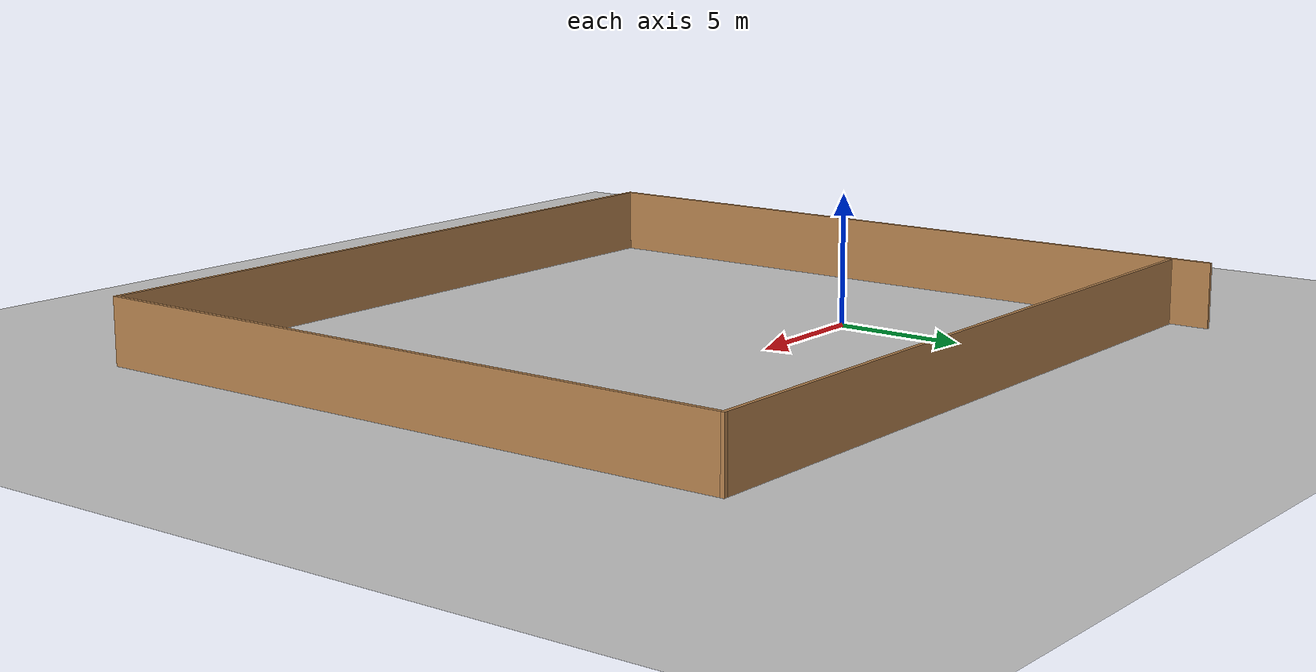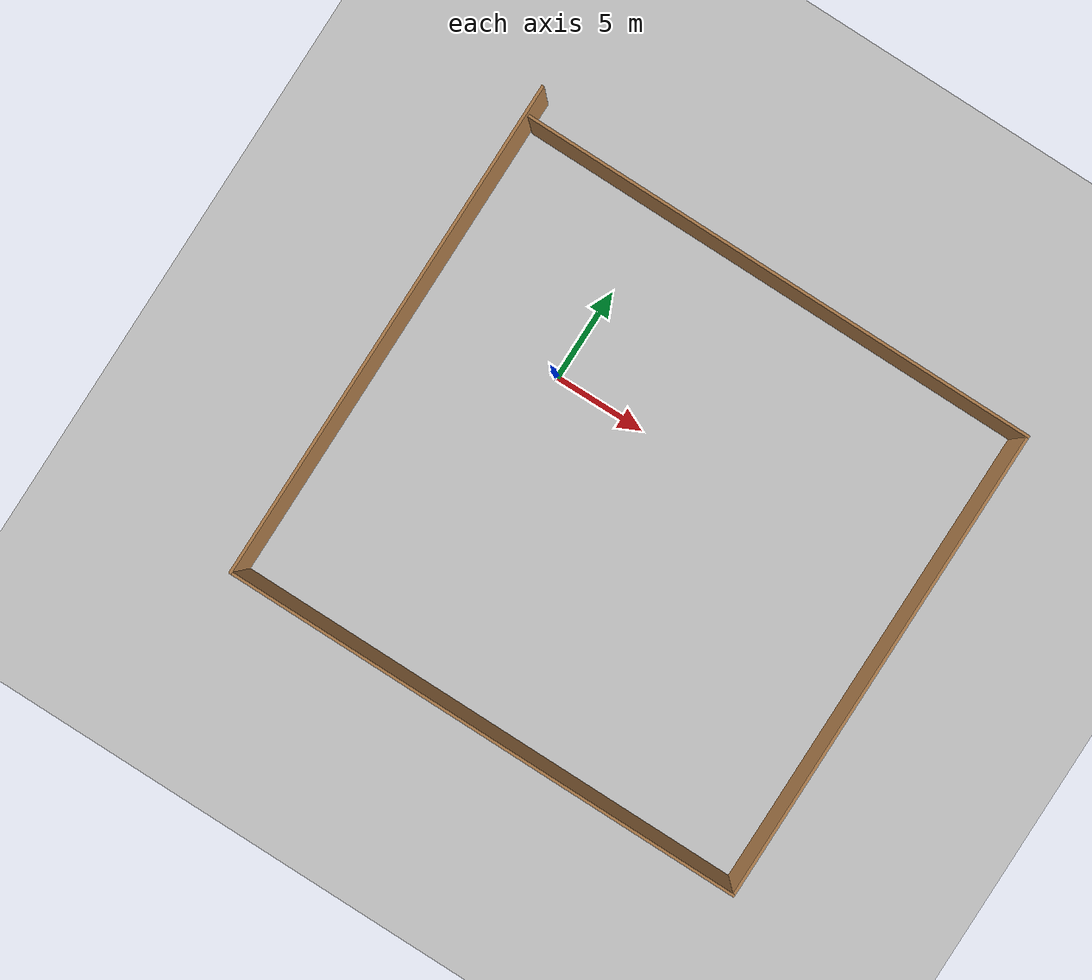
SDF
<sdf version="1.6">
 <world name="default">
  <model name="ground_plane">
   <static>1</static>
   <link name="link">
    <collision name="collision">
     <geometry><plane><normal>0 0 1</normal><size>100 100</size></plane></geometry>
     <surface>
      <contact><collide_bitmask>65535</collide_bitmask></contact>
      <friction><ode><mu>100</mu><mu2>50</mu2></ode></friction>
     </surface>
    </collision>
    <visual name="visual">
     <cast_shadows>0</cast_shadows>
     <geometry><plane><normal>0 0 1</normal><size>100 100</size></plane></geometry>
     <material>
      <script><uri>file://media/materials/scripts/gazebo.material</uri><name>Gazebo/Grey</name></script>
     </material>
    </visual>
   </link>
  </model>
  <model name="outdoor_0">
   <pose>6.43796 -2.65422 0 0 -0 0</pose>
   <link name="Wall_10">
    <collision name="Wall_10_Collision">
     <geometry><box><size>28.5 0.15 2.5</size></box></geometry>
     <pose>0 0 1.25 0 -0 0</pose>
    </collision>
    <visual name="Wall_10_Visual">
     <pose>0 0 1.25 0 -0 0</pose>
     <geometry><box><size>28.5 0.15 2.5</size></box></geometry>
     <material>
      <script><uri>file://media/materials/scripts/gazebo.material</uri><name>Gazebo/Wood</name></script>
      <ambient>1 1 1 1</ambient>
     </material>
     <meta><layer>0</layer></meta>
    </visual>
    <pose>0.125001 12.3 0 0 -0 3.14159</pose>
   </link>
   <link name="Wall_7">
    <collision name="Wall_7_Collision">
     <geometry><box><size>27.75 0.15 2.5</size></box></geometry>
     <pose>0 0 1.25 0 -0 0</pose>
    </collision>
    <visual name="Wall_7_Visual">
     <pose>0 0 1.25 0 -0 0</pose>
     <geometry><box><size>27.75 0.15 2.5</size></box></geometry>
     <material>
      <script><uri>file://media/materials/scripts/gazebo.material</uri><name>Gazebo/Wood</name></script>
      <ambient>1 1 1 1</ambient>
     </material>
     <meta><layer>0</layer></meta>
    </visual>
    <pose>-14.3 0 0 0 -0 -1.5708</pose>
   </link>
   <link name="Wall_8">
    <collision name="Wall_8_Collision">
     <geometry><box><size>28.75 0.15 2.5</size></box></geometry>
     <pose>0 0 1.25 0 -0 0</pose>
    </collision>
    <visual name="Wall_8_Visual">
     <pose>0 0 1.25 0 -0 0</pose>
     <geometry><box><size>28.75 0.15 2.5</size></box></geometry>
     <material>
      <script><uri>file://media/materials/scripts/gazebo.material</uri><name>Gazebo/Wood</name></script>
      <ambient>1 1 1 1</ambient>
     </material>
     <meta><layer>0</layer></meta>
    </visual>
    <pose>1e-06 -13.8 0 0 -0 0</pose>
   </link>
   <link name="Wall_9">
    <collision name="Wall_9_Collision">
     <geometry><box><size>26.25 0.15 2.5</size></box></geometry>
     <pose>0 0 1.25 0 -0 0</pose>
    </collision>
    <visual name="Wall_9_Visual">
     <pose>0 0 1.25 0 -0 0</pose>
     <geometry><box><size>26.25 0.15 2.5</size></box></geometry>
     <material>
      <script><uri>file://media/materials/scripts/gazebo.material</uri><name>Gazebo/Wood</name></script>
      <ambient>1 1 1 1</ambient>
     </material>
     <meta><layer>0</layer></meta>
    </visual>
    <pose>14.3 -0.75 0 0 -0 1.5708</pose>
   </link>
   <static>1</static>
  </model>
 </world>
</sdf>
